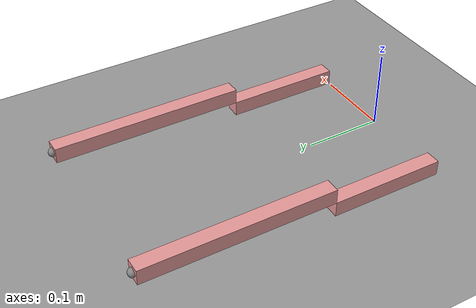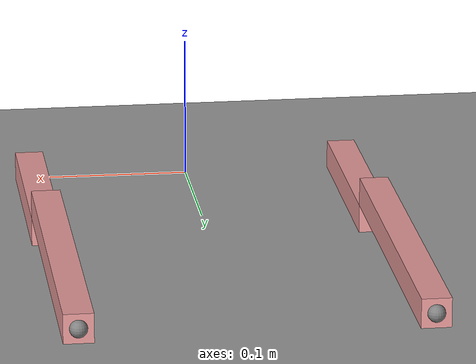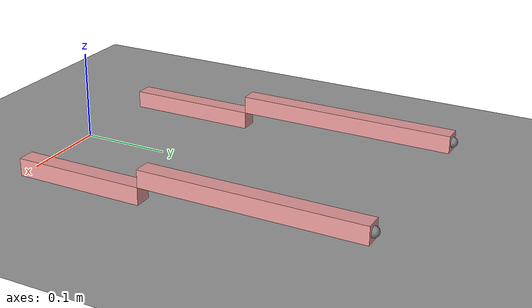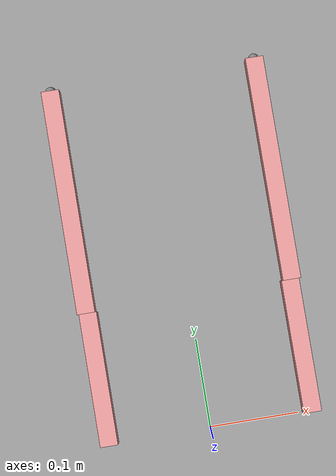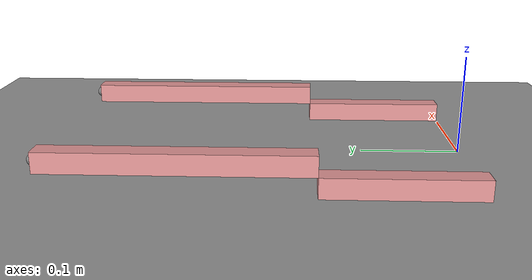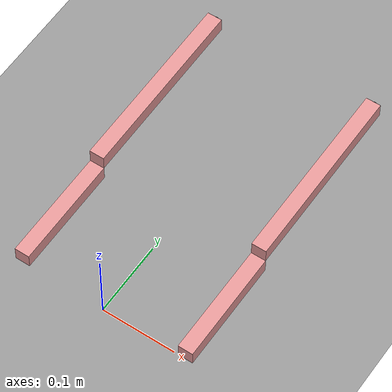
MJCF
<mujoco>
    <option timestep="0.001" integrator="implicitfast">
        <flag warmstart="enable"/>
    </option>
    <default>
        <!-- reusable components -->
        <default class="extrusion">
            <geom type="box" density="2700" friction="0.6 0.1 0.1" rgba="0.9 0.6 0.6 1"
                contype="0" conaffinity="0"/>
        </default>

    </default>

    <worldbody>
    <!-- floor -->
    <geom name="floor" type="plane" pos="0 0 0" size="5 5 0.1" rgba="0.6 0.6 0.6 1"/>

    <!-- Left Link -->
    <body name="Crank_L" pos="-0.115 0 0.01">
        <inertial pos="0 0.075 0" mass="0.133" diaginertia="2.5381e-4 8.867e-6 2.5381e-4"/>
        <geom class="extrusion" size="0.01 0.075 0.01" pos="0 0.075 0"/>
        <joint name="L_cranker_joint" type="hinge" pos="0 0 0" axis="0 0 1" range="-3.14 3.14" limited="true" damping="0.1"/>

        <body name="Coupler_L" pos="0 0.15 0.02">
            <inertial pos="0 0.11875 0" mass="0.21875" diaginertia="1.1466e-3 1.458e-5 1.1466e-3"/>
            <geom class="extrusion" size="0.01 0.125 0.01" pos="0 0.125 0"/>
            <joint name="L_coupler_joint" type="hinge" pos="0 0 0" axis="0 0 1" damping="0.1"/>

            <body name="E1" pos="0 0.25 0">
                <site name="sL" pos="0 0 0" size="0.006"/>
            </body>
        </body>
    </body>

    <!-- Rght Link -->
    <body name="Crank_R" pos="0.115 0 0.01">
        <inertial pos="0 0.075 0" mass="0.133" diaginertia="2.5381e-4 8.867e-6 2.5381e-4"/>
        <geom class="extrusion" size="0.01 0.075 0.01" pos="0 0.075 0"/>
        <joint name="R_cranker_joint" type="hinge" pos="0 0 0" axis="0 0 1" range="-3.14 3.14" limited="true" damping="0.1"/>

        <body name="Coupler_R" pos="0 0.15 0.02">
            <inertial pos="0 0.11875 0" mass="0.21875" diaginertia="1.1466e-3 1.458e-5 1.1466e-3"/>
            <geom class="extrusion" size="0.01 0.125 0.01" pos="0 0.125 0"/>
            <joint name="R_coupler_joint" type="hinge" pos="0 0 0" axis="0 0 1" damping="0.1"/>

            <body name="E2" pos="0 0.25 0">
                <site name="sR" pos="0 0 0" size="0.006"/>
            </body>
        </body>
    </body>
    </worldbody>

    <keyframe>
        <key name="init" qpos="0 0 0 0"/>
    </keyframe>

    <actuator>
        <position name="servo_L" joint="L_cranker_joint" ctrlrange="-3.14 3.14" kp="300" kv="10"/>
        <position name="servo_R" joint="R_cranker_joint" ctrlrange="-3.14 3.14" kp="300" kv="10"/>
    </actuator>
    <equality>
        <connect site1="sL" site2="sR"/>
    </equality>
</mujoco>
